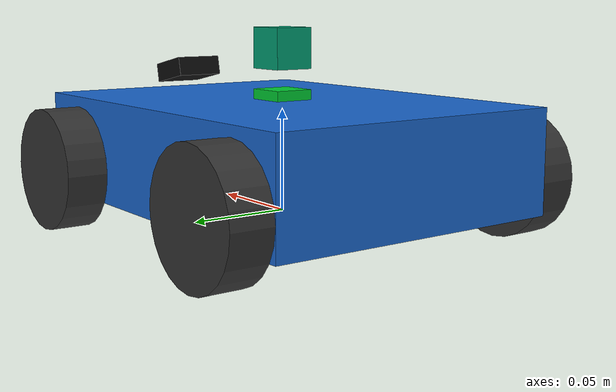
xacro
<?xml version="1.0"?>
<robot xmlns:xacro="http://www.ros.org/wiki/xacro" name="esp32_robot">

  <!-- Parameters — tweak these to match your hardware -->
  <xacro:property name="chassis_length" value="0.20"/>
  <xacro:property name="chassis_width"  value="0.15"/>
  <xacro:property name="chassis_height" value="0.05"/>
  <xacro:property name="chassis_mass"   value="0.5"/>

  <xacro:property name="wheel_radius"   value="0.03"/>
  <xacro:property name="wheel_width"    value="0.02"/>
  <xacro:property name="wheel_mass"     value="0.05"/>

  <xacro:property name="wheel_x_offset" value="0.07"/>
  <xacro:property name="wheel_y_offset" value="0.085"/>
  <xacro:property name="wheel_z_offset" value="-0.01"/>

  <!-- Inertia macros -->
  <xacro:macro name="box_inertia" params="m l w h">
    <inertial>
      <mass value="${m}"/>
      <inertia
        ixx="${m*(w*w+h*h)/12}" ixy="0" ixz="0"
        iyy="${m*(l*l+h*h)/12}" iyz="0"
        izz="${m*(l*l+w*w)/12}"/>
    </inertial>
  </xacro:macro>

  <xacro:macro name="cylinder_inertia" params="m r h">
    <inertial>
      <mass value="${m}"/>
      <inertia
        ixx="${m*(3*r*r+h*h)/12}" ixy="0" ixz="0"
        iyy="${m*(3*r*r+h*h)/12}" iyz="0"
        izz="${m*r*r/2}"/>
    </inertial>
  </xacro:macro>

  <!-- Wheel macro (reused 4x) -->
  <xacro:macro name="wheel" params="name x_sign y_sign">
    <link name="${name}_wheel">
      <visual>
        <geometry>
          <cylinder radius="${wheel_radius}" length="${wheel_width}"/>
        </geometry>
        <material name="dark_gray">
          <color rgba="0.2 0.2 0.2 1"/>
        </material>
      </visual>
      <collision>
        <geometry>
          <cylinder radius="${wheel_radius}" length="${wheel_width}"/>
        </geometry>
      </collision>
      <xacro:cylinder_inertia m="${wheel_mass}" r="${wheel_radius}" h="${wheel_width}"/>
    </link>

    <joint name="${name}_wheel_joint" type="continuous">
      <parent link="base_link"/>
      <child  link="${name}_wheel"/>
      <origin
        xyz="${x_sign * wheel_x_offset} ${y_sign * wheel_y_offset} ${wheel_z_offset}"
        rpy="${pi/2} 0 0"/>
      <axis xyz="0 0 1"/>
      <dynamics damping="0.1" friction="0.5"/>
    </joint>
  </xacro:macro>

  <!-- ===================== BASE LINK ===================== -->
  <link name="base_footprint"/>

  <joint name="base_footprint_joint" type="fixed">
    <parent link="base_footprint"/>
    <child  link="base_link"/>
    <origin xyz="0 0 ${wheel_radius}" rpy="0 0 0"/>
  </joint>

  <link name="base_link">
    <visual>
      <geometry>
        <box size="${chassis_length} ${chassis_width} ${chassis_height}"/>
      </geometry>
      <material name="blue">
        <color rgba="0.1 0.4 0.8 1"/>
      </material>
    </visual>
    <collision>
      <geometry>
        <box size="${chassis_length} ${chassis_width} ${chassis_height}"/>
      </geometry>
    </collision>
    <xacro:box_inertia m="${chassis_mass}"
      l="${chassis_length}" w="${chassis_width}" h="${chassis_height}"/>
  </link>

  <!-- ===================== WHEELS ===================== -->
  <xacro:wheel name="front_left"  x_sign=" 1" y_sign=" 1"/>
  <xacro:wheel name="front_right" x_sign=" 1" y_sign="-1"/>
  <xacro:wheel name="rear_left"   x_sign="-1" y_sign=" 1"/>
  <xacro:wheel name="rear_right"  x_sign="-1" y_sign="-1"/>

  <!-- ===================== IMU LINK ===================== -->
  <link name="imu_link">
    <visual>
      <geometry><box size="0.02 0.02 0.005"/></geometry>
      <material name="green"><color rgba="0.0 0.8 0.2 1"/></material>
    </visual>
    <inertial>
      <mass value="0.001"/>
      <inertia ixx="1e-6" ixy="0" ixz="0" iyy="1e-6" iyz="0" izz="1e-6"/>
    </inertial>
  </link>

  <joint name="imu_joint" type="fixed">
    <parent link="base_link"/>
    <child  link="imu_link"/>
    <!-- Centered on chassis, top surface — matches MPU6050 placement -->
    <origin xyz="0 0 ${chassis_height/2 + 0.0025}" rpy="0 0 0"/>
  </joint>

  <!-- ===================== ULTRASONIC LINK ===================== -->
  <link name="ultrasonic_link">
    <visual>
      <geometry><box size="0.02 0.04 0.015"/></geometry>
      <material name="yellow"><color rgba="0.9 0.8 0.0 1"/></material>
    </visual>
    <inertial>
      <mass value="0.005"/>
      <inertia ixx="1e-6" ixy="0" ixz="0" iyy="1e-6" iyz="0" izz="1e-6"/>
    </inertial>
  </link>

  <joint name="ultrasonic_joint" type="fixed">
    <parent link="base_link"/>
    <child  link="ultrasonic_link"/>
    <!-- Front-center of chassis, facing forward -->
    <origin xyz="${chassis_length/2} 0 0" rpy="0 0 0"/>
  </joint>

  <!-- ===================== CAMERA MOUNT ===================== -->
  <!-- Placeholder for ESP-CAM when you get it -->
  <link name="camera_link">
    <visual>
      <geometry><box size="0.025 0.025 0.01"/></geometry>
      <material name="black"><color rgba="0.05 0.05 0.05 1"/></material>
    </visual>
    <inertial>
      <mass value="0.010"/>
      <inertia ixx="1e-6" ixy="0" ixz="0" iyy="1e-6" iyz="0" izz="1e-6"/>
    </inertial>
  </link>

  <link name="camera_optical_link"/>

  <joint name="camera_joint" type="fixed">
    <parent link="base_link"/>
    <child  link="camera_link"/>
    <origin xyz="${chassis_length/2 - 0.01} 0 ${chassis_height/2 + 0.01}" rpy="0 0.2 0"/>
  </joint>

  <joint name="camera_optical_joint" type="fixed">
    <parent link="camera_link"/>
    <child  link="camera_optical_link"/>
    <!-- ROS camera convention: Z forward, X right, Y down -->
    <origin xyz="0 0 0" rpy="${-pi/2} 0 ${-pi/2}"/>
  </joint>

  <!-- ===================== GAZEBO PLUGINS ===================== -->

  <!-- Drive controller (gazebo_ros_diff_drive in Humble drives the front pair) -->
  <gazebo>
    <plugin name="diff_drive" filename="libgazebo_ros_diff_drive.so">
      <ros>
        <remapping>cmd_vel:=cmd_vel</remapping>
        <remapping>odom:=odom</remapping>
      </ros>
      <update_rate>50</update_rate>
      <left_joint>front_left_wheel_joint</left_joint>
      <right_joint>front_right_wheel_joint</right_joint>
      <wheel_separation>${chassis_width + wheel_width}</wheel_separation>
      <wheel_diameter>${wheel_radius * 2}</wheel_diameter>
      <max_wheel_torque>5.0</max_wheel_torque>
      <max_wheel_acceleration>2.0</max_wheel_acceleration>
      <publish_odom>true</publish_odom>
      <publish_odom_tf>true</publish_odom_tf>
      <publish_wheel_tf>true</publish_wheel_tf>
      <odometry_frame>odom</odometry_frame>
      <robot_base_frame>base_footprint</robot_base_frame>
    </plugin>
  </gazebo>

  <!-- IMU sensor -->
  <gazebo reference="imu_link">
    <sensor name="imu_sensor" type="imu">
      <always_on>true</always_on>
      <update_rate>50</update_rate>
      <plugin name="imu_plugin" filename="libgazebo_ros_imu_sensor.so">
        <ros>
          <remapping>~/out:=/imu/data</remapping>
        </ros>
        <initial_orientation_as_reference>false</initial_orientation_as_reference>
      </plugin>
      <imu>
        <angular_velocity>
          <!-- Matches your MPU6050's noise characteristics -->
          <x><noise type="gaussian"><mean>0.0</mean><stddev>0.02</stddev></noise></x>
          <y><noise type="gaussian"><mean>0.0</mean><stddev>0.02</stddev></noise></y>
          <z><noise type="gaussian"><mean>0.0</mean><stddev>0.02</stddev></noise></z>
        </angular_velocity>
        <linear_acceleration>
          <x><noise type="gaussian"><mean>0.0</mean><stddev>0.1</stddev></noise></x>
          <y><noise type="gaussian"><mean>0.0</mean><stddev>0.1</stddev></noise></y>
          <z><noise type="gaussian"><mean>0.0</mean><stddev>0.1</stddev></noise></z>
        </linear_acceleration>
      </imu>
    </sensor>
  </gazebo>

  <!-- Ultrasonic / Range sensor -->
  <gazebo reference="ultrasonic_link">
    <sensor name="ultrasonic_sensor" type="ray">
      <always_on>true</always_on>
      <update_rate>10</update_rate>
      <plugin name="range_plugin" filename="libgazebo_ros_ray_sensor.so">
        <ros>
          <remapping>~/out:=/range/data</remapping>
        </ros>
        <output_type>sensor_msgs/Range</output_type>
        <frame_name>ultrasonic_link</frame_name>
        <radiation_type>ultrasound</radiation_type>
      </plugin>
      <ray>
        <scan>
          <horizontal>
            <samples>3</samples>
            <resolution>1</resolution>
            <min_angle>-0.13</min_angle>
            <max_angle> 0.13</max_angle>
          </horizontal>
          <vertical>
            <samples>3</samples>
            <resolution>1</resolution>
            <min_angle>-0.13</min_angle>
            <max_angle> 0.13</max_angle>
          </vertical>
        </scan>
        <range>
          <min>0.02</min>
          <max>4.0</max>
          <resolution>0.01</resolution>
        </range>
        <noise type="gaussian">
          <mean>0.0</mean>
          <stddev>0.02</stddev>
        </noise>
      </ray>
    </sensor>
  </gazebo>

  <!-- Gas sensor -->
  <link name="gas_sensor_link">
    <visual>
      <geometry><box size="0.02 0.02 0.02"/></geometry>
    </visual>
  </link>

  <joint name="gas_joint" type="fixed">
    <parent link="base_link"/>
    <child link="gas_sensor_link"/>
    <origin xyz="0 0 0.05"/>
  </joint>

  <!-- Camera sensor (monocular — for ORB-SLAM3 later) -->
  <gazebo reference="camera_link">
    <sensor name="camera_sensor" type="camera">
      <always_on>true</always_on>
      <update_rate>30</update_rate>
      <plugin name="camera_plugin" filename="libgazebo_ros_camera.so">
        <ros>
          <remapping>image_raw:=/camera/image_raw</remapping>
          <remapping>camera_info:=/camera/camera_info</remapping>
        </ros>
        <camera_name>camera</camera_name>
        <frame_name>camera_optical_link</frame_name>
      </plugin>
      <camera>
        <horizontal_fov>1.089</horizontal_fov>
        <image>
          <width>640</width>
          <height>480</height>
          <format>R8G8B8</format>
        </image>
        <clip>
          <near>0.05</near>
          <far>10.0</far>
        </clip>
        <noise>
          <type>gaussian</type>
          <mean>0.0</mean>
          <stddev>0.007</stddev>
        </noise>
      </camera>
    </sensor>
  </gazebo>

  <!-- Wheel friction for skid steer -->
  <gazebo reference="front_left_wheel">
    <mu1>1.0</mu1><mu2>0.5</mu2><kp>1e6</kp><kd>100</kd>
  </gazebo>
  <gazebo reference="front_right_wheel">
    <mu1>1.0</mu1><mu2>0.5</mu2><kp>1e6</kp><kd>100</kd>
  </gazebo>
  <gazebo reference="rear_left_wheel">
    <mu1>1.0</mu1><mu2>0.5</mu2><kp>1e6</kp><kd>100</kd>
  </gazebo>
  <gazebo reference="rear_right_wheel">
    <mu1>1.0</mu1><mu2>0.5</mu2><kp>1e6</kp><kd>100</kd>
  </gazebo>

</robot>
